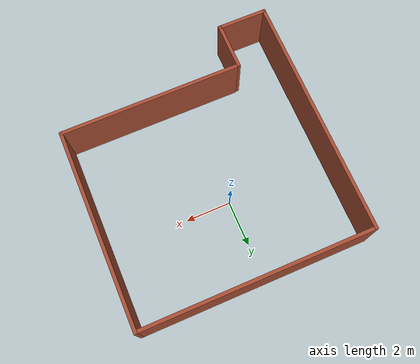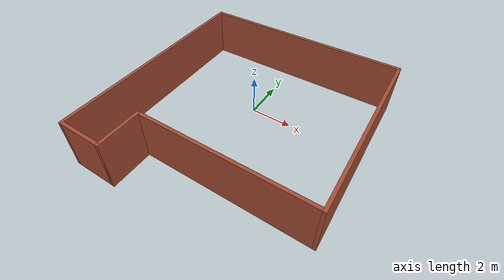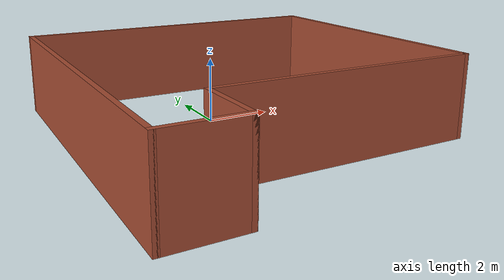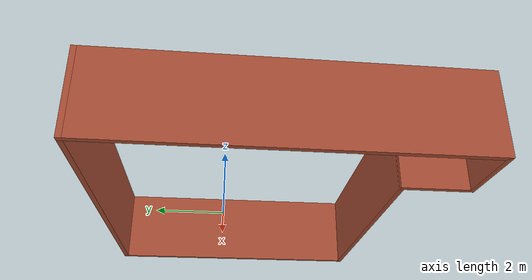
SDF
<?xml version='1.0'?>
<sdf version='1.6'>
  <model name='walls_placed'>
    <pose frame=''>0.47 -1.56 0 0 -0 0</pose>
    <link name='Wall_4'>
      <collision name='Wall_4_Collision'>
        <geometry>
          <box>
            <size>8 0.15 2.5</size>
          </box>
        </geometry>
        <pose frame=''>0 0 1.25 0 -0 0</pose>
      </collision>
      <visual name='Wall_4_Visual'>
        <pose frame=''>0 0 1.25 0 -0 0</pose>
        <geometry>
          <box>
            <size>8 0.15 2.5</size>
          </box>
        </geometry>
        <material>
          <script>
            <uri>file://media/materials/scripts/gazebo.material</uri>
            <name>Gazebo/Bricks</name>
          </script>
          <ambient>1 1 1 1</ambient>
        </material>
        <meta>
          <layer>0</layer>
        </meta>
      </visual>
      <pose frame=''>1.125 -3.3 0 0 -0 0</pose>
    </link>
    <link name='Wall_5'>
      <collision name='Wall_5_Collision'>
        <geometry>
          <box>
            <size>8.75 0.15 2.5</size>
          </box>
        </geometry>
        <pose frame=''>0 0 1.25 0 -0 0</pose>
      </collision>
      <visual name='Wall_5_Visual'>
        <pose frame=''>0 0 1.25 0 -0 0</pose>
        <geometry>
          <box>
            <size>8.75 0.15 2.5</size>
          </box>
        </geometry>
        <material>
          <script>
            <uri>file://media/materials/scripts/gazebo.material</uri>
            <name>Gazebo/Bricks</name>
          </script>
          <ambient>1 1 1 1</ambient>
        </material>
        <meta>
          <layer>0</layer>
        </meta>
      </visual>
      <pose frame=''>5.05 1 0 0 -0 1.5708</pose>
    </link>
    <link name='Wall_6'>
      <collision name='Wall_6_Collision'>
        <geometry>
          <box>
            <size>10.25 0.15 2.5</size>
          </box>
        </geometry>
        <pose frame=''>0 0 1.25 0 -0 0</pose>
      </collision>
      <visual name='Wall_6_Visual'>
        <pose frame=''>0 0 1.25 0 -0 0</pose>
        <geometry>
          <box>
            <size>10.25 0.15 2.5</size>
          </box>
        </geometry>
        <material>
          <script>
            <uri>file://media/materials/scripts/gazebo.material</uri>
            <name>Gazebo/Bricks</name>
          </script>
          <ambient>1 1 1 1</ambient>
        </material>
        <meta>
          <layer>0</layer>
        </meta>
      </visual>
      <pose frame=''>-0 5.3 0 0 -0 3.14159</pose>
    </link>
    <link name='Wall_7'>
      <collision name='Wall_7_Collision'>
        <geometry>
          <box>
            <size>10.75 0.15 2.5</size>
          </box>
        </geometry>
        <pose frame=''>0 0 1.25 0 -0 0</pose>
      </collision>
      <visual name='Wall_7_Visual'>
        <pose frame=''>0 0 1.25 0 -0 0</pose>
        <geometry>
          <box>
            <size>10.75 0.15 2.5</size>
          </box>
        </geometry>
        <material>
          <script>
            <uri>file://media/materials/scripts/gazebo.material</uri>
            <name>Gazebo/Bricks</name>
          </script>
          <ambient>1 1 1 1</ambient>
        </material>
        <meta>
          <layer>0</layer>
        </meta>
      </visual>
      <pose frame=''>-5.05 0 0 0 -0 -1.5708</pose>
    </link>
    <link name='Wall_8'>
      <collision name='Wall_8_Collision'>
        <geometry>
          <box>
            <size>2.25 0.15 2.5</size>
          </box>
        </geometry>
        <pose frame=''>0 0 1.25 0 -0 0</pose>
      </collision>
      <visual name='Wall_8_Visual'>
        <pose frame=''>0 0 1.25 0 -0 0</pose>
        <geometry>
          <box>
            <size>2.25 0.15 2.5</size>
          </box>
        </geometry>
        <material>
          <script>
            <uri>file://media/materials/scripts/gazebo.material</uri>
            <name>Gazebo/Bricks</name>
          </script>
          <ambient>1 1 1 1</ambient>
        </material>
        <meta>
          <layer>0</layer>
        </meta>
      </visual>
      <pose frame=''>-4 -5.3 0 0 -0 0</pose>
    </link>
    <link name='Wall_9'>
      <collision name='Wall_9_Collision'>
        <geometry>
          <box>
            <size>2.125 0.15 2.5</size>
          </box>
        </geometry>
        <pose frame=''>0 0 1.25 0 -0 0</pose>
      </collision>
      <visual name='Wall_9_Visual'>
        <pose frame=''>0 0 1.25 0 -0 0</pose>
        <geometry>
          <box>
            <size>2.125 0.15 2.5</size>
          </box>
        </geometry>
        <material>
          <script>
            <uri>file://media/materials/scripts/gazebo.material</uri>
            <name>Gazebo/Bricks</name>
          </script>
          <ambient>1 1 1 1</ambient>
        </material>
        <meta>
          <layer>0</layer>
        </meta>
      </visual>
      <pose frame=''>-2.95 -4.3125 0 0 -0 1.5708</pose>
    </link>
    <static>1</static>
  </model>
</sdf>
